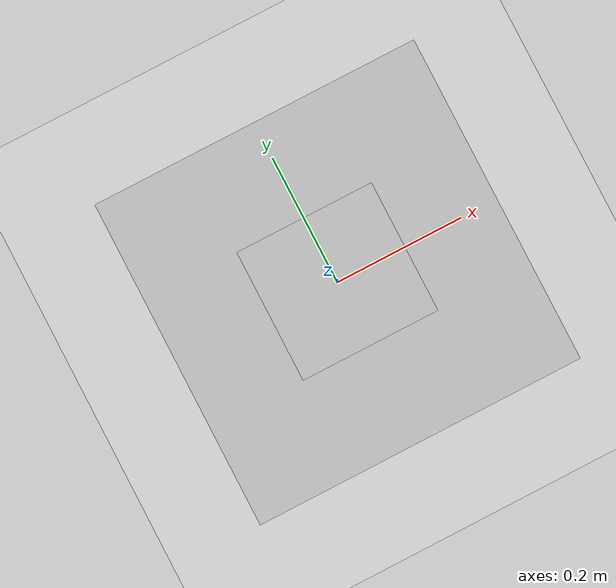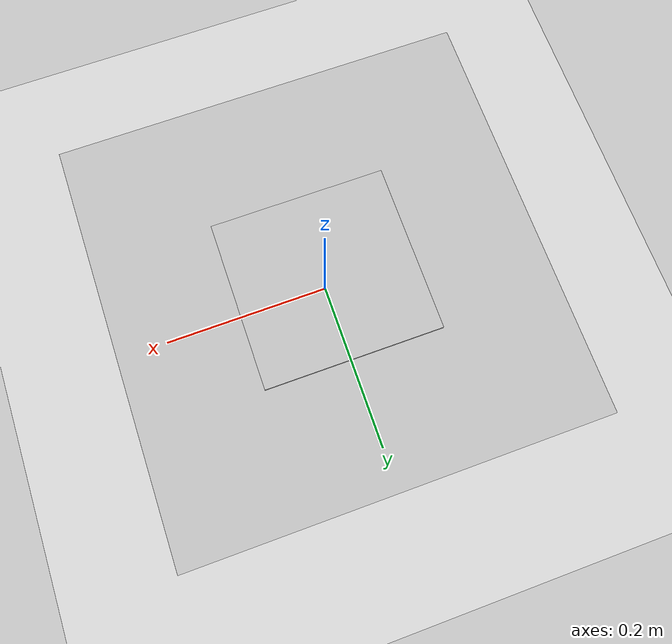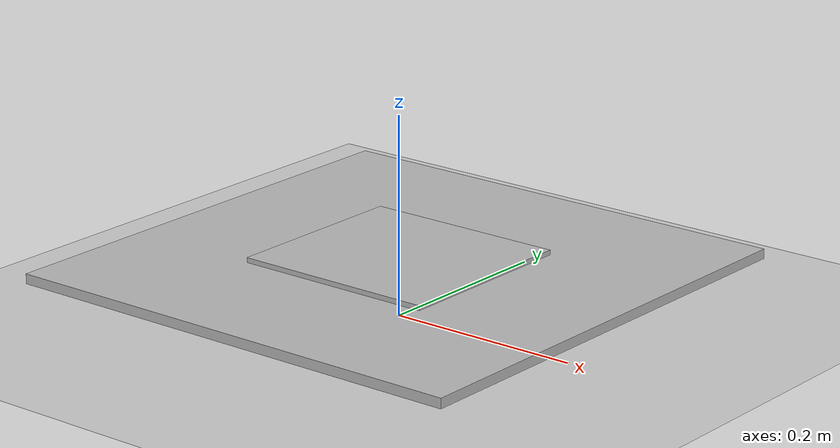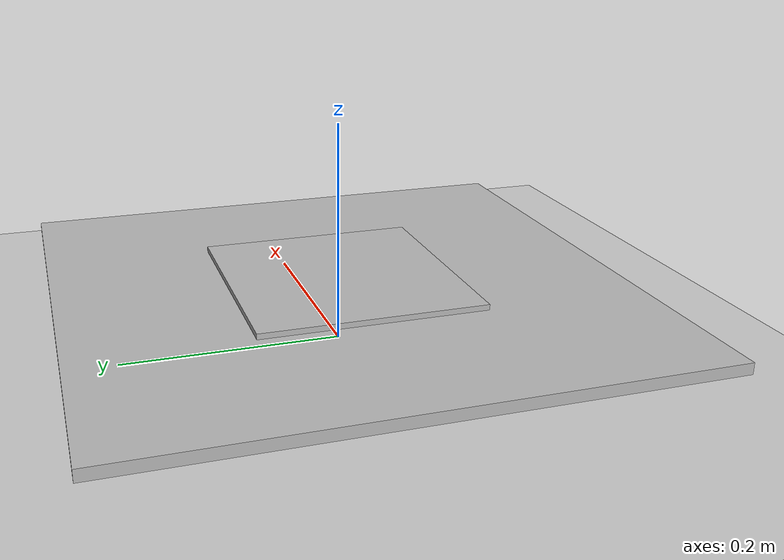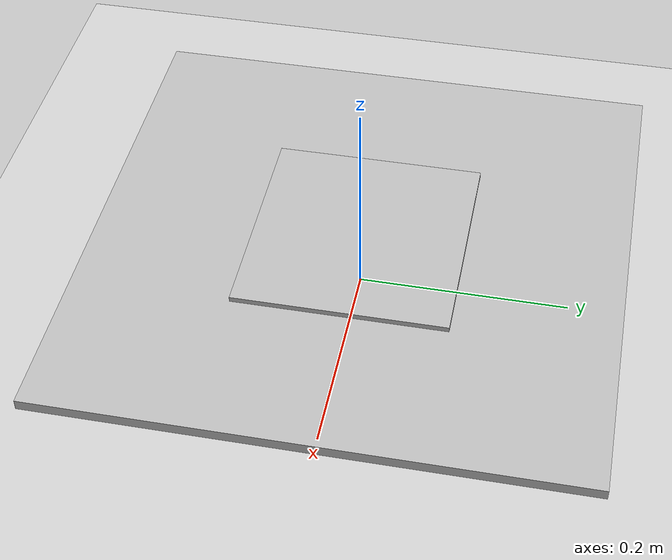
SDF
<?xml version="1.0" ?>
<sdf version="1.5">
  <world name="default">
    <scene>
      <shadows>0</shadows>
    </scene>
    <!-- A global light source -->
    <include>
      <uri>model://sun</uri>
    </include>

    <include>
      <uri>model://ground_plane</uri>
    </include>

    <!-- Landing Pad -->
    <include>
      <uri>model://landing_box</uri>
      <pose>0 0 0.05 0 0 0</pose>
    </include>
  </world>
</sdf>

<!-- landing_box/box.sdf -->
<sdf version="1.5">
  <model name="landing_box">
    <static>false</static>
    <link name="box_link">
      <inertial>
        <mass>1.0</mass>
        <inertia>          <!-- inertias are tricky to compute -->
          <!-- http://gazebosim.org/tutorials?tut=inertia&cat=build_robot -->
          <ixx>0.02407</ixx>          <!-- for a box: ixx = 0.083 * mass * (y*y + z*z) -->
          <ixy>0.0</ixy>          <!-- for a box: ixy = 0 -->
          <ixz>0.0</ixz>          <!-- for a box: ixz = 0 -->
          <iyy>0.02407</iyy>          <!-- for a box: iyy = 0.083 * mass * (x*x + z*z) -->
          <iyz>0.0</iyz>          <!-- for a box: iyz = 0 -->
          <izz>0.0415</izz>          <!-- for a box: izz = 0.083 * mass * (x*x + y*y) -->
        </inertia>
      </inertial>
      <collision name="collision">
        <geometry>
          <box>
            <size>0.5 0.5 0.01</size>
          </box>
        </geometry>
        <surface>
          <friction>
            <ode>
              <mu>1</mu>
              <mu2>1</mu2>
            </ode>
          </friction>
        </surface>
      </collision>
      <visual name="visual">
        <geometry>
          <box>
            <size>0.5 0.5 0.01</size>
          </box>
        </geometry>
      </visual>
    </link>

    <include>
      <uri>model://landing_pad</uri>
      <pose>0 0 0.01 0 0 0</pose>
      <name>landing_pad</name>
    </include>
    <joint name='pad_link' type='fixed'>
      <child>landing_pad::link</child>
      <parent>box_link</parent>
    </joint>
  </model>
</sdf>

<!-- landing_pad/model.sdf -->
<sdf version="1.6">
  <model name="landing_pad">
    <static>true</static>
    <link name="link">
      <visual name="visual">
        <geometry>
          <mesh>
            <uri>model://landing_pad/meshes/landing_pad.dae</uri>
          <scale>1.0 1.0 1.0</scale></mesh>
        </geometry>
      </visual>
    </link>
  </model>
</sdf>
